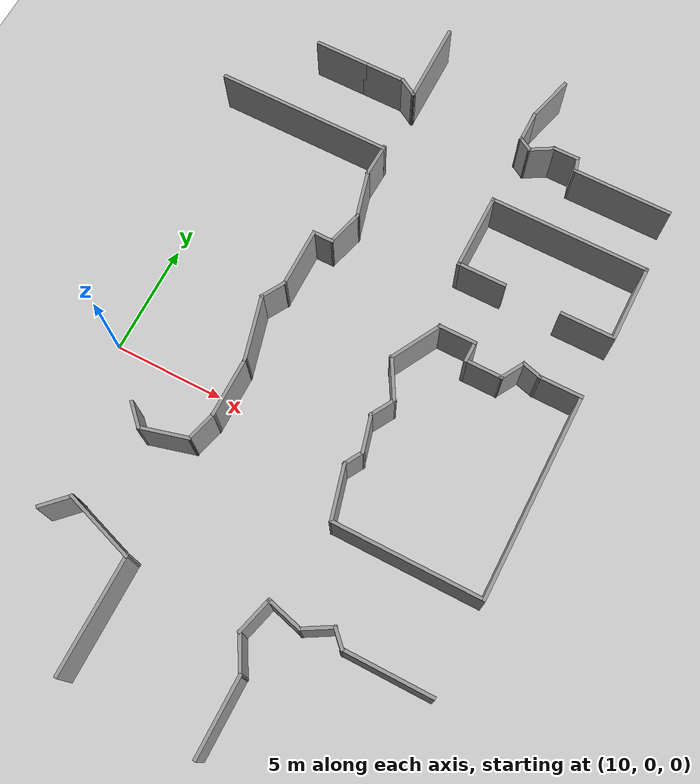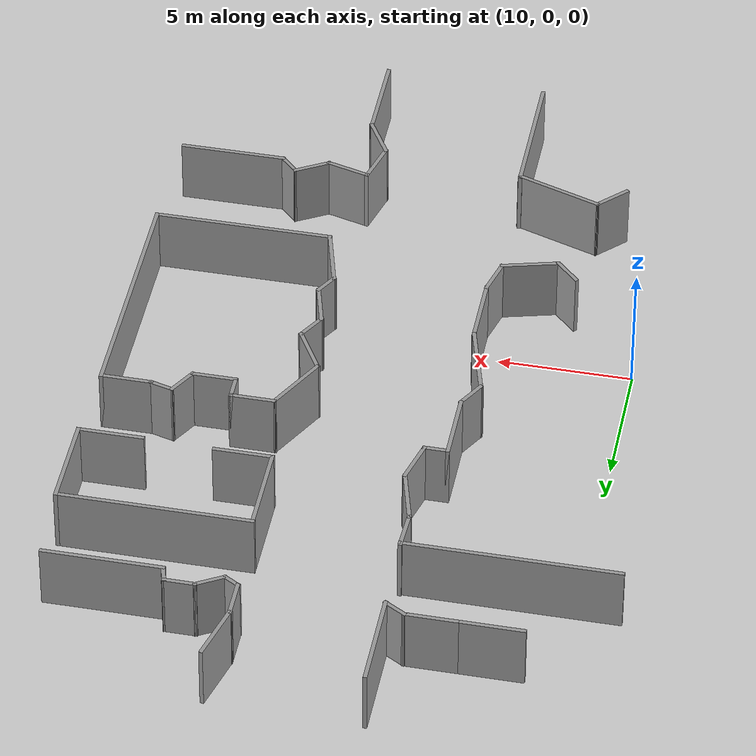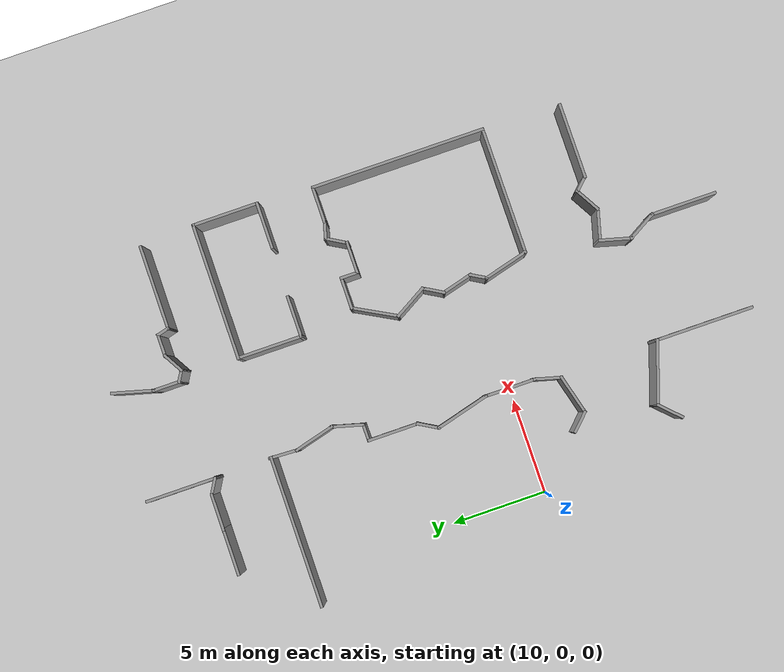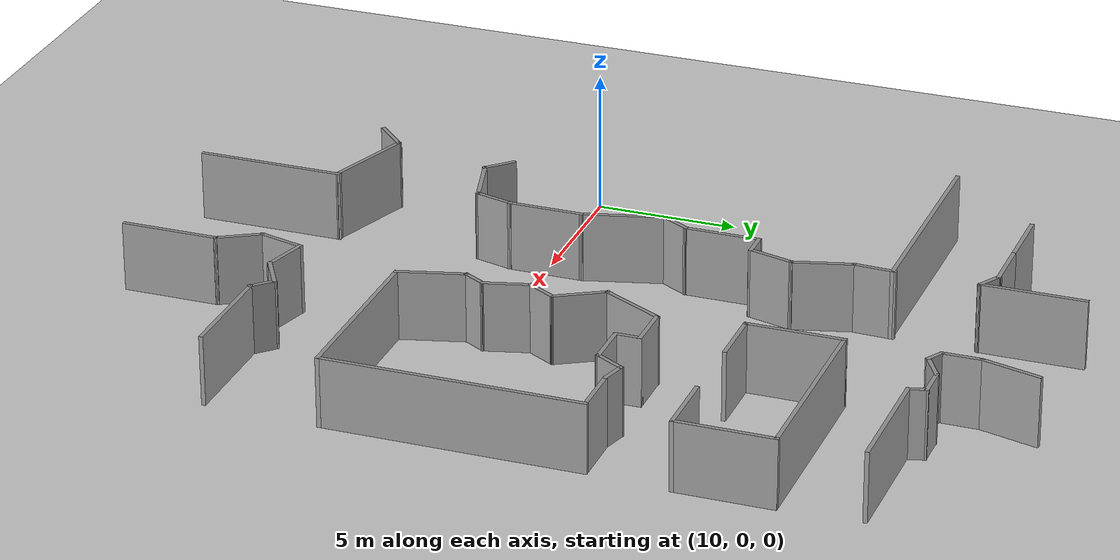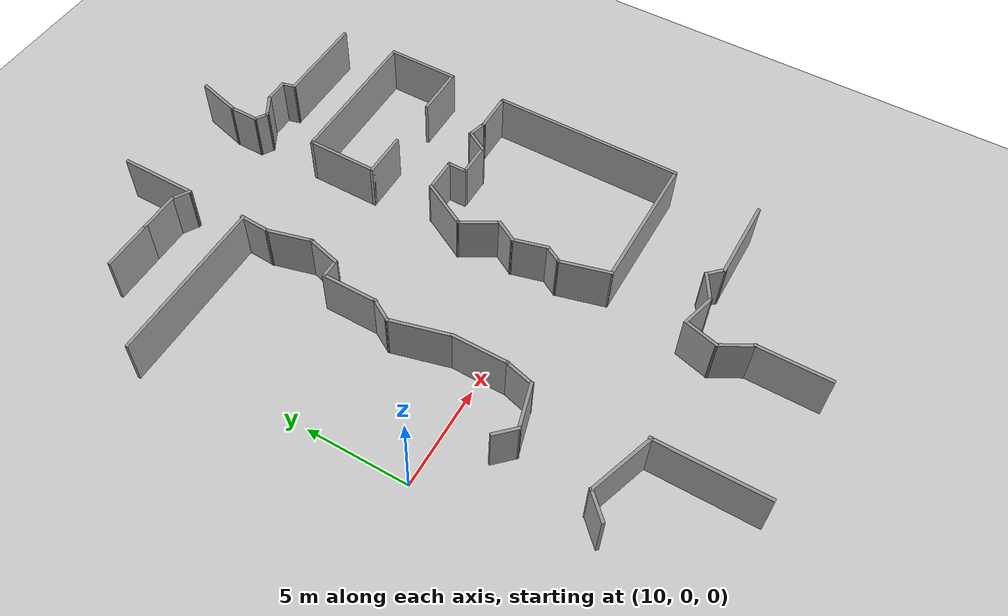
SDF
<sdf version="1.6">
 <world name="default">
  <model name="ground_plane">
   <static>1</static>
   <link name="link">
    <collision name="collision">
     <geometry><plane><normal>0 0 1</normal><size>100 100</size></plane></geometry>
     <surface><friction><ode><mu>100</mu><mu2>50</mu2></ode></friction></surface>
    </collision>
    <visual name="visual">
     <cast_shadows>0</cast_shadows>
     <geometry><plane><normal>0 0 1</normal><size>100 100</size></plane></geometry>
     <material>
      <script><uri>file://media/materials/scripts/gazebo.material</uri><name>Gazebo/Grey</name></script>
     </material>
    </visual>
   </link>
  </model>
  <model name="room">
   <pose>12.4952 3.15232 0 0 -0 0</pose>
   <link name="Wall_357">
    <collision name="Wall_357_Collision">
     <geometry><box><size>1.25 0.15 2.5</size></box></geometry>
     <pose>0 0 1.25 0 -0 0</pose>
    </collision>
    <visual name="Wall_357_Visual">
     <pose>0 0 1.25 0 -0 0</pose>
     <geometry><box><size>1.25 0.15 2.5</size></box></geometry>
     <material>
      <script><uri>file://media/materials/scripts/gazebo.material</uri><name>Gazebo/Grey</name></script>
      <ambient>1 1 1 1</ambient>
     </material>
     <meta><layer>0</layer></meta>
    </visual>
    <pose>0.437737 -5.84833 0 0 0 -0.785398</pose>
   </link>
   <link name="Wall_358">
    <collision name="Wall_358_Collision">
     <geometry><box><size>2.25 0.15 2.5</size></box></geometry>
     <pose>0 0 1.25 0 -0 0</pose>
    </collision>
    <visual name="Wall_358_Visual">
     <pose>0 0 1.25 0 -0 0</pose>
     <geometry><box><size>2.25 0.15 2.5</size></box></geometry>
     <material>
      <script><uri>file://media/materials/scripts/gazebo.material</uri><name>Gazebo/Grey</name></script>
      <ambient>1 1 1 1</ambient>
     </material>
     <meta><layer>0</layer></meta>
    </visual>
    <pose>1.84087 -5.96548 0 0 -0 0.261799</pose>
   </link>
   <link name="Wall_359">
    <collision name="Wall_359_Collision">
     <geometry><box><size>1.5 0.15 2.5</size></box></geometry>
     <pose>0 0 1.25 0 -0 0</pose>
    </collision>
    <visual name="Wall_359_Visual">
     <pose>0 0 1.25 0 -0 0</pose>
     <geometry><box><size>1.5 0.15 2.5</size></box></geometry>
     <material>
      <script><uri>file://media/materials/scripts/gazebo.material</uri><name>Gazebo/Grey</name></script>
      <ambient>1 1 1 1</ambient>
     </material>
     <meta><layer>0</layer></meta>
    </visual>
    <pose>3.02979 -5.04172 0 0 -0 1.309</pose>
   </link>
   <link name="Wall_360">
    <collision name="Wall_360_Collision">
     <geometry><box><size>2.75 0.15 2.5</size></box></geometry>
     <pose>0 0 1.25 0 -0 0</pose>
    </collision>
    <visual name="Wall_360_Visual">
     <pose>0 0 1.25 0 -0 0</pose>
     <geometry><box><size>2.75 0.15 2.5</size></box></geometry>
     <material>
      <script><uri>file://media/materials/scripts/gazebo.material</uri><name>Gazebo/Grey</name></script>
      <ambient>1 1 1 1</ambient>
     </material>
     <meta><layer>0</layer></meta>
    </visual>
    <pose>3.2045 -3.08972 0 0 -0 1.5708</pose>
   </link>
   <link name="Wall_361">
    <collision name="Wall_361_Collision">
     <geometry><box><size>3 0.15 2.5</size></box></geometry>
     <pose>0 0 1.25 0 -0 0</pose>
    </collision>
    <visual name="Wall_361_Visual">
     <pose>0 0 1.25 0 -0 0</pose>
     <geometry><box><size>3 0.15 2.5</size></box></geometry>
     <material>
      <script><uri>file://media/materials/scripts/gazebo.material</uri><name>Gazebo/Grey</name></script>
      <ambient>1 1 1 1</ambient>
     </material>
     <meta><layer>0</layer></meta>
    </visual>
    <pose>2.83568 -0.413273 0 0 -0 1.8326</pose>
   </link>
   <link name="Wall_362">
    <collision name="Wall_362_Collision">
     <geometry><box><size>1.25 0.15 2.5</size></box></geometry>
     <pose>0 0 1.25 0 -0 0</pose>
    </collision>
    <visual name="Wall_362_Visual">
     <pose>0 0 1.25 0 -0 0</pose>
     <geometry><box><size>1.25 0.15 2.5</size></box></geometry>
     <material>
      <script><uri>file://media/materials/scripts/gazebo.material</uri><name>Gazebo/Grey</name></script>
      <ambient>1 1 1 1</ambient>
     </material>
     <meta><layer>0</layer></meta>
    </visual>
    <pose>2.74186 1.43949 0 0 -0 1.0472</pose>
   </link>
   <link name="Wall_369">
    <collision name="Wall_369_Collision">
     <geometry><box><size>2.75 0.15 2.5</size></box></geometry>
     <pose>0 0 1.25 0 -0 0</pose>
    </collision>
    <visual name="Wall_369_Visual">
     <pose>0 0 1.25 0 -0 0</pose>
     <geometry><box><size>2.75 0.15 2.5</size></box></geometry>
     <material>
      <script><uri>file://media/materials/scripts/gazebo.material</uri><name>Gazebo/Grey</name></script>
      <ambient>1 1 1 1</ambient>
     </material>
     <meta><layer>0</layer></meta>
    </visual>
    <pose>3.01686 3.2158 0 0 -0 1.5708</pose>
   </link>
   <link name="Wall_370">
    <collision name="Wall_370_Collision">
     <geometry><box><size>1 0.15 2.5</size></box></geometry>
     <pose>0 0 1.25 0 -0 0</pose>
    </collision>
    <visual name="Wall_370_Visual">
     <pose>0 0 1.25 0 -0 0</pose>
     <geometry><box><size>1 0.15 2.5</size></box></geometry>
     <material>
      <script><uri>file://media/materials/scripts/gazebo.material</uri><name>Gazebo/Grey</name></script>
      <ambient>1 1 1 1</ambient>
     </material>
     <meta><layer>0</layer></meta>
    </visual>
    <pose>3.44186 4.5158 0 0 -0 0</pose>
   </link>
   <link name="Wall_371">
    <collision name="Wall_371_Collision">
     <geometry><box><size>1.75 0.15 2.5</size></box></geometry>
     <pose>0 0 1.25 0 -0 0</pose>
    </collision>
    <visual name="Wall_371_Visual">
     <pose>0 0 1.25 0 -0 0</pose>
     <geometry><box><size>1.75 0.15 2.5</size></box></geometry>
     <material>
      <script><uri>file://media/materials/scripts/gazebo.material</uri><name>Gazebo/Grey</name></script>
      <ambient>1 1 1 1</ambient>
     </material>
     <meta><layer>0</layer></meta>
    </visual>
    <pose>4.07392 5.28854 0 0 -0 1.309</pose>
   </link>
   <link name="Wall_372">
    <collision name="Wall_372_Collision">
     <geometry><box><size>2.25 0.15 2.5</size></box></geometry>
     <pose>0 0 1.25 0 -0 0</pose>
    </collision>
    <visual name="Wall_372_Visual">
     <pose>0 0 1.25 0 -0 0</pose>
     <geometry><box><size>2.25 0.15 2.5</size></box></geometry>
     <material>
      <script><uri>file://media/materials/scripts/gazebo.material</uri><name>Gazebo/Grey</name></script>
      <ambient>1 1 1 1</ambient>
     </material>
     <meta><layer>0</layer></meta>
    </visual>
    <pose>4.00921 7.0755 0 0 -0 1.8326</pose>
   </link>
   <link name="Wall_373">
    <collision name="Wall_373_Collision">
     <geometry><box><size>1.56108 0.15 2.5</size></box></geometry>
     <pose>0 0 1.25 0 -0 0</pose>
    </collision>
    <visual name="Wall_373_Visual">
     <pose>0 0 1.25 0 -0 0</pose>
     <geometry><box><size>1.56108 0.15 2.5</size></box></geometry>
     <material>
      <script><uri>file://media/materials/scripts/gazebo.material</uri><name>Gazebo/Grey</name></script>
      <ambient>1 1 1 1</ambient>
     </material>
     <meta><layer>0</layer></meta>
    </visual>
    <pose>3.76736 8.79463 0 0 -0 1.5284</pose>
   </link>
   <link name="Wall_374">
    <collision name="Wall_374_Collision">
     <geometry><box><size>8 0.15 2.5</size></box></geometry>
     <pose>0 0 1.25 0 -0 0</pose>
    </collision>
    <visual name="Wall_374_Visual">
     <pose>0 0 1.25 0 -0 0</pose>
     <geometry><box><size>8 0.15 2.5</size></box></geometry>
     <material>
      <script><uri>file://media/materials/scripts/gazebo.material</uri><name>Gazebo/Grey</name></script>
      <ambient>1 1 1 1</ambient>
     </material>
     <meta><layer>0</layer></meta>
    </visual>
    <pose>-0.127739 9.43972 0 0 -0 3.14159</pose>
   </link>
   <link name="Wall_377">
    <collision name="Wall_377_Collision">
     <geometry><box><size>3.55981 0.15 2.5</size></box></geometry>
     <pose>0 0 1.25 0 -0 0</pose>
    </collision>
    <visual name="Wall_377_Visual">
     <pose>0 0 1.25 0 -0 0</pose>
     <geometry><box><size>3.55981 0.15 2.5</size></box></geometry>
     <material>
      <script><uri>file://media/materials/scripts/gazebo.material</uri><name>Gazebo/Grey</name></script>
      <ambient>1 1 1 1</ambient>
     </material>
     <meta><layer>0</layer></meta>
    </visual>
    <pose>16.1865 7.68741 0 0 0 -1.5708</pose>
   </link>
   <link name="Wall_378">
    <collision name="Wall_378_Collision">
     <geometry><box><size>2.5 0.15 2.5</size></box></geometry>
     <pose>0 0 1.25 0 -0 0</pose>
    </collision>
    <visual name="Wall_378_Visual">
     <pose>0 0 1.25 0 -0 0</pose>
     <geometry><box><size>2.5 0.15 2.5</size></box></geometry>
     <material>
      <script><uri>file://media/materials/scripts/gazebo.material</uri><name>Gazebo/Grey</name></script>
      <ambient>1 1 1 1</ambient>
     </material>
     <meta><layer>0</layer></meta>
    </visual>
    <pose>15.0115 5.9825 0 0 -0 3.14159</pose>
   </link>
   <link name="Wall_382">
    <collision name="Wall_382_Collision">
     <geometry><box><size>7.25 0.15 2.5</size></box></geometry>
     <pose>0 0 1.25 0 -0 0</pose>
    </collision>
    <visual name="Wall_382_Visual">
     <pose>0 0 1.25 0 -0 0</pose>
     <geometry><box><size>7.25 0.15 2.5</size></box></geometry>
     <material>
      <script><uri>file://media/materials/scripts/gazebo.material</uri><name>Gazebo/Grey</name></script>
      <ambient>1 1 1 1</ambient>
     </material>
     <meta><layer>0</layer></meta>
    </visual>
    <pose>12.6365 9.39231 0 0 -0 3.14159</pose>
   </link>
   <link name="Wall_385">
    <collision name="Wall_385_Collision">
     <geometry><box><size>3.5 0.15 2.5</size></box></geometry>
     <pose>0 0 1.25 0 -0 0</pose>
    </collision>
    <visual name="Wall_385_Visual">
     <pose>0 0 1.25 0 -0 0</pose>
     <geometry><box><size>3.5 0.15 2.5</size></box></geometry>
     <material>
      <script><uri>file://media/materials/scripts/gazebo.material</uri><name>Gazebo/Grey</name></script>
      <ambient>1 1 1 1</ambient>
     </material>
     <meta><layer>0</layer></meta>
    </visual>
    <pose>9.08655 7.71732 0 0 0 -1.5708</pose>
   </link>
   <link name="Wall_386">
    <collision name="Wall_386_Collision">
     <geometry><box><size>2.25 0.15 2.5</size></box></geometry>
     <pose>0 0 1.25 0 -0 0</pose>
    </collision>
    <visual name="Wall_386_Visual">
     <pose>0 0 1.25 0 -0 0</pose>
     <geometry><box><size>2.25 0.15 2.5</size></box></geometry>
     <material>
      <script><uri>file://media/materials/scripts/gazebo.material</uri><name>Gazebo/Grey</name></script>
      <ambient>1 1 1 1</ambient>
     </material>
     <meta><layer>0</layer></meta>
    </visual>
    <pose>10.1365 6.04232 0 0 -0 0</pose>
   </link>
   <link name="Wall_388">
    <collision name="Wall_388_Collision">
     <geometry><box><size>1.75 0.15 2.5</size></box></geometry>
     <pose>0 0 1.25 0 -0 0</pose>
    </collision>
    <visual name="Wall_388_Visual">
     <pose>0 0 1.25 0 -0 0</pose>
     <geometry><box><size>1.75 0.15 2.5</size></box></geometry>
     <material>
      <script><uri>file://media/materials/scripts/gazebo.material</uri><name>Gazebo/Grey</name></script>
      <ambient>1 1 1 1</ambient>
     </material>
     <meta><layer>0</layer></meta>
    </visual>
    <pose>10.4141 3.17204 0 0 -0 0</pose>
   </link>
   <link name="Wall_389">
    <collision name="Wall_389_Collision">
     <geometry><box><size>1 0.15 2.5</size></box></geometry>
     <pose>0 0 1.25 0 -0 0</pose>
    </collision>
    <visual name="Wall_389_Visual">
     <pose>0 0 1.25 0 -0 0</pose>
     <geometry><box><size>1 0.15 2.5</size></box></geometry>
     <material>
      <script><uri>file://media/materials/scripts/gazebo.material</uri><name>Gazebo/Grey</name></script>
      <ambient>1 1 1 1</ambient>
     </material>
     <meta><layer>0</layer></meta>
    </visual>
    <pose>11.2141 2.74704 0 0 0 -1.5708</pose>
   </link>
   <link name="Wall_390">
    <collision name="Wall_390_Collision">
     <geometry><box><size>1.75 0.15 2.5</size></box></geometry>
     <pose>0 0 1.25 0 -0 0</pose>
    </collision>
    <visual name="Wall_390_Visual">
     <pose>0 0 1.25 0 -0 0</pose>
     <geometry><box><size>1.75 0.15 2.5</size></box></geometry>
     <material>
      <script><uri>file://media/materials/scripts/gazebo.material</uri><name>Gazebo/Grey</name></script>
      <ambient>1 1 1 1</ambient>
     </material>
     <meta><layer>0</layer></meta>
    </visual>
    <pose>12.0141 2.32205 0 0 -0 0</pose>
   </link>
   <link name="Wall_391">
    <collision name="Wall_391_Collision">
     <geometry><box><size>1.25 0.15 2.5</size></box></geometry>
     <pose>0 0 1.25 0 -0 0</pose>
    </collision>
    <visual name="Wall_391_Visual">
     <pose>0 0 1.25 0 -0 0</pose>
     <geometry><box><size>1.25 0.15 2.5</size></box></geometry>
     <material>
      <script><uri>file://media/materials/scripts/gazebo.material</uri><name>Gazebo/Grey</name></script>
      <ambient>1 1 1 1</ambient>
     </material>
     <meta><layer>0</layer></meta>
    </visual>
    <pose>13.0891 2.79836 0 0 -0 1.0472</pose>
   </link>
   <link name="Wall_392">
    <collision name="Wall_392_Collision">
     <geometry><box><size>1 0.15 2.5</size></box></geometry>
     <pose>0 0 1.25 0 -0 0</pose>
    </collision>
    <visual name="Wall_392_Visual">
     <pose>0 0 1.25 0 -0 0</pose>
     <geometry><box><size>1 0.15 2.5</size></box></geometry>
     <material>
      <script><uri>file://media/materials/scripts/gazebo.material</uri><name>Gazebo/Grey</name></script>
      <ambient>1 1 1 1</ambient>
     </material>
     <meta><layer>0</layer></meta>
    </visual>
    <pose>13.7746 3.16467 0 0 0 -0.261799</pose>
   </link>
   <link name="Wall_393">
    <collision name="Wall_393_Collision">
     <geometry><box><size>2 0.15 2.5</size></box></geometry>
     <pose>0 0 1.25 0 -0 0</pose>
    </collision>
    <visual name="Wall_393_Visual">
     <pose>0 0 1.25 0 -0 0</pose>
     <geometry><box><size>2 0.15 2.5</size></box></geometry>
     <material>
      <script><uri>file://media/materials/scripts/gazebo.material</uri><name>Gazebo/Grey</name></script>
      <ambient>1 1 1 1</ambient>
     </material>
     <meta><layer>0</layer></meta>
    </visual>
    <pose>15.1101 3.05468 0 0 -0 0</pose>
   </link>
   <link name="Wall_394">
    <collision name="Wall_394_Collision">
     <geometry><box><size>9.25 0.15 2.5</size></box></geometry>
     <pose>0 0 1.25 0 -0 0</pose>
    </collision>
    <visual name="Wall_394_Visual">
     <pose>0 0 1.25 0 -0 0</pose>
     <geometry><box><size>9.25 0.15 2.5</size></box></geometry>
     <material>
      <script><uri>file://media/materials/scripts/gazebo.material</uri><name>Gazebo/Grey</name></script>
      <ambient>1 1 1 1</ambient>
     </material>
     <meta><layer>0</layer></meta>
    </visual>
    <pose>16.0351 -1.49532 0 0 0 -1.5708</pose>
   </link>
   <link name="Wall_395">
    <collision name="Wall_395_Collision">
     <geometry><box><size>6.75 0.15 2.5</size></box></geometry>
     <pose>0 0 1.25 0 -0 0</pose>
    </collision>
    <visual name="Wall_395_Visual">
     <pose>0 0 1.25 0 -0 0</pose>
     <geometry><box><size>6.75 0.15 2.5</size></box></geometry>
     <material>
      <script><uri>file://media/materials/scripts/gazebo.material</uri><name>Gazebo/Grey</name></script>
      <ambient>1 1 1 1</ambient>
     </material>
     <meta><layer>0</layer></meta>
    </visual>
    <pose>12.7351 -6.04532 0 0 -0 3.14159</pose>
   </link>
   <link name="Wall_396">
    <collision name="Wall_396_Collision">
     <geometry><box><size>2.5 0.15 2.5</size></box></geometry>
     <pose>0 0 1.25 0 -0 0</pose>
    </collision>
    <visual name="Wall_396_Visual">
     <pose>0 0 1.25 0 -0 0</pose>
     <geometry><box><size>2.5 0.15 2.5</size></box></geometry>
     <material>
      <script><uri>file://media/materials/scripts/gazebo.material</uri><name>Gazebo/Grey</name></script>
      <ambient>1 1 1 1</ambient>
     </material>
     <meta><layer>0</layer></meta>
    </visual>
    <pose>9.13101 -4.91036 0 0 -0 1.8326</pose>
   </link>
   <link name="Wall_397">
    <collision name="Wall_397_Collision">
     <geometry><box><size>1 0.15 2.5</size></box></geometry>
     <pose>0 0 1.25 0 -0 0</pose>
    </collision>
    <visual name="Wall_397_Visual">
     <pose>0 0 1.25 0 -0 0</pose>
     <geometry><box><size>1 0.15 2.5</size></box></geometry>
     <material>
      <script><uri>file://media/materials/scripts/gazebo.material</uri><name>Gazebo/Grey</name></script>
      <ambient>1 1 1 1</ambient>
     </material>
     <meta><layer>0</layer></meta>
    </visual>
    <pose>9.0394 -3.40734 0 0 -0 1.0472</pose>
   </link>
   <link name="Wall_398">
    <collision name="Wall_398_Collision">
     <geometry><box><size>1.75 0.15 2.5</size></box></geometry>
     <pose>0 0 1.25 0 -0 0</pose>
    </collision>
    <visual name="Wall_398_Visual">
     <pose>0 0 1.25 0 -0 0</pose>
     <geometry><box><size>1.75 0.15 2.5</size></box></geometry>
     <material>
      <script><uri>file://media/materials/scripts/gazebo.material</uri><name>Gazebo/Grey</name></script>
      <ambient>1 1 1 1</ambient>
     </material>
     <meta><layer>0</layer></meta>
    </visual>
    <pose>9.04484 -2.26654 0 0 -0 1.8326</pose>
   </link>
   <link name="Wall_399">
    <collision name="Wall_399_Collision">
     <geometry><box><size>1.25 0.15 2.5</size></box></geometry>
     <pose>0 0 1.25 0 -0 0</pose>
    </collision>
    <visual name="Wall_399_Visual">
     <pose>0 0 1.25 0 -0 0</pose>
     <geometry><box><size>1.25 0.15 2.5</size></box></geometry>
     <material>
      <script><uri>file://media/materials/scripts/gazebo.material</uri><name>Gazebo/Grey</name></script>
      <ambient>1 1 1 1</ambient>
     </material>
     <meta><layer>0</layer></meta>
    </visual>
    <pose>9.11279 -1.01748 0 0 -0 1.0472</pose>
   </link>
   <link name="Wall_400">
    <collision name="Wall_400_Collision">
     <geometry><box><size>2 0.15 2.5</size></box></geometry>
     <pose>0 0 1.25 0 -0 0</pose>
    </collision>
    <visual name="Wall_400_Visual">
     <pose>0 0 1.25 0 -0 0</pose>
     <geometry><box><size>2 0.15 2.5</size></box></geometry>
     <material>
      <script><uri>file://media/materials/scripts/gazebo.material</uri><name>Gazebo/Grey</name></script>
      <ambient>1 1 1 1</ambient>
     </material>
     <meta><layer>0</layer></meta>
    </visual>
    <pose>8.92529 0.259907 0 0 -0 2.0944</pose>
   </link>
   <link name="Wall_401">
    <collision name="Wall_401_Collision">
     <geometry><box><size>2.5546 0.15 2.5</size></box></geometry>
     <pose>0 0 1.25 0 -0 0</pose>
    </collision>
    <visual name="Wall_401_Visual">
     <pose>0 0 1.25 0 -0 0</pose>
     <geometry><box><size>2.5546 0.15 2.5</size></box></geometry>
     <material>
      <script><uri>file://media/materials/scripts/gazebo.material</uri><name>Gazebo/Grey</name></script>
      <ambient>1 1 1 1</ambient>
     </material>
     <meta><layer>0</layer></meta>
    </visual>
    <pose>9.03843 2.11651 0 0 -0 1.07152</pose>
   </link>
   <link name="Wall_407">
    <collision name="Wall_407_Collision">
     <geometry><box><size>2.5 0.15 2.5</size></box></geometry>
     <pose>0 0 1.25 0 -0 0</pose>
    </collision>
    <visual name="Wall_407_Visual">
     <pose>0 0 1.25 0 -0 0</pose>
     <geometry><box><size>2.5 0.15 2.5</size></box></geometry>
     <material>
      <script><uri>file://media/materials/scripts/gazebo.material</uri><name>Gazebo/Grey</name></script>
      <ambient>1 1 1 1</ambient>
     </material>
     <meta><layer>0</layer></meta>
    </visual>
    <pose>-0.012013 12.8578 0 0 -0 0</pose>
   </link>
   <link name="Wall_408">
    <collision name="Wall_408_Collision">
     <geometry><box><size>2 0.15 2.5</size></box></geometry>
     <pose>0 0 1.25 0 -0 0</pose>
    </collision>
    <visual name="Wall_408_Visual">
     <pose>0 0 1.25 0 -0 0</pose>
     <geometry><box><size>2 0.15 2.5</size></box></geometry>
     <material>
      <script><uri>file://media/materials/scripts/gazebo.material</uri><name>Gazebo/Grey</name></script>
      <ambient>1 1 1 1</ambient>
     </material>
     <meta><layer>0</layer></meta>
    </visual>
    <pose>2.08799 12.8578 0 0 -0 0</pose>
   </link>
   <link name="Wall_409">
    <collision name="Wall_409_Collision">
     <geometry><box><size>1 0.15 2.5</size></box></geometry>
     <pose>0 0 1.25 0 -0 0</pose>
    </collision>
    <visual name="Wall_409_Visual">
     <pose>0 0 1.25 0 -0 0</pose>
     <geometry><box><size>1 0.15 2.5</size></box></geometry>
     <material>
      <script><uri>file://media/materials/scripts/gazebo.material</uri><name>Gazebo/Grey</name></script>
      <ambient>1 1 1 1</ambient>
     </material>
     <meta><layer>0</layer></meta>
    </visual>
    <pose>3.38105 12.6453 0 0 0 -0.523599</pose>
   </link>
   <link name="Wall_410">
    <collision name="Wall_410_Collision">
     <geometry><box><size>3.75 0.15 2.5</size></box></geometry>
     <pose>0 0 1.25 0 -0 0</pose>
    </collision>
    <visual name="Wall_410_Visual">
     <pose>0 0 1.25 0 -0 0</pose>
     <geometry><box><size>3.75 0.15 2.5</size></box></geometry>
     <material>
      <script><uri>file://media/materials/scripts/gazebo.material</uri><name>Gazebo/Grey</name></script>
      <ambient>1 1 1 1</ambient>
     </material>
     <meta><layer>0</layer></meta>
    </visual>
    <pose>3.74911 14.2328 0 0 -0 1.5708</pose>
   </link>
   <link name="Wall_418">
    <collision name="Wall_418_Collision">
     <geometry><box><size>2.25 0.15 2.5</size></box></geometry>
     <pose>0 0 1.25 0 -0 0</pose>
    </collision>
    <visual name="Wall_418_Visual">
     <pose>0 0 1.25 0 -0 0</pose>
     <geometry><box><size>2.25 0.15 2.5</size></box></geometry>
     <material>
      <script><uri>file://media/materials/scripts/gazebo.material</uri><name>Gazebo/Grey</name></script>
      <ambient>1 1 1 1</ambient>
     </material>
     <meta><layer>0</layer></meta>
    </visual>
    <pose>9.19725 14.9562 0 0 0 -1.8326</pose>
   </link>
   <link name="Wall_419">
    <collision name="Wall_419_Collision">
     <geometry><box><size>1.5 0.15 2.5</size></box></geometry>
     <pose>0 0 1.25 0 -0 0</pose>
    </collision>
    <visual name="Wall_419_Visual">
     <pose>0 0 1.25 0 -0 0</pose>
     <geometry><box><size>1.5 0.15 2.5</size></box></geometry>
     <material>
      <script><uri>file://media/materials/scripts/gazebo.material</uri><name>Gazebo/Grey</name></script>
      <ambient>1 1 1 1</ambient>
     </material>
     <meta><layer>0</layer></meta>
    </visual>
    <pose>8.92549 13.267 0 0 0 -1.5708</pose>
   </link>
   <link name="Wall_420">
    <collision name="Wall_420_Collision">
     <geometry><box><size>0.75 0.15 2.5</size></box></geometry>
     <pose>0 0 1.25 0 -0 0</pose>
    </collision>
    <visual name="Wall_420_Visual">
     <pose>0 0 1.25 0 -0 0</pose>
     <geometry><box><size>0.75 0.15 2.5</size></box></geometry>
     <material>
      <script><uri>file://media/materials/scripts/gazebo.material</uri><name>Gazebo/Grey</name></script>
      <ambient>1 1 1 1</ambient>
     </material>
     <meta><layer>0</layer></meta>
    </visual>
    <pose>9.1853 12.442 0 0 0 -0.523599</pose>
   </link>
   <link name="Wall_421">
    <collision name="Wall_421_Collision">
     <geometry><box><size>1.25 0.15 2.5</size></box></geometry>
     <pose>0 0 1.25 0 -0 0</pose>
    </collision>
    <visual name="Wall_421_Visual">
     <pose>0 0 1.25 0 -0 0</pose>
     <geometry><box><size>1.25 0.15 2.5</size></box></geometry>
     <material>
      <script><uri>file://media/materials/scripts/gazebo.material</uri><name>Gazebo/Grey</name></script>
      <ambient>1 1 1 1</ambient>
     </material>
     <meta><layer>0</layer></meta>
    </visual>
    <pose>9.92142 12.567 0 0 -0 0.523599</pose>
   </link>
   <link name="Wall_422">
    <collision name="Wall_422_Collision">
     <geometry><box><size>1.25 0.15 2.5</size></box></geometry>
     <pose>0 0 1.25 0 -0 0</pose>
    </collision>
    <visual name="Wall_422_Visual">
     <pose>0 0 1.25 0 -0 0</pose>
     <geometry><box><size>1.25 0.15 2.5</size></box></geometry>
     <material>
      <script><uri>file://media/materials/scripts/gazebo.material</uri><name>Gazebo/Grey</name></script>
      <ambient>1 1 1 1</ambient>
     </material>
     <meta><layer>0</layer></meta>
    </visual>
    <pose>10.9477 12.842 0 0 -0 0</pose>
   </link>
   <link name="Wall_423">
    <collision name="Wall_423_Collision">
     <geometry><box><size>0.75 0.15 2.5</size></box></geometry>
     <pose>0 0 1.25 0 -0 0</pose>
    </collision>
    <visual name="Wall_423_Visual">
     <pose>0 0 1.25 0 -0 0</pose>
     <geometry><box><size>0.75 0.15 2.5</size></box></geometry>
     <material>
      <script><uri>file://media/materials/scripts/gazebo.material</uri><name>Gazebo/Grey</name></script>
      <ambient>1 1 1 1</ambient>
     </material>
     <meta><layer>0</layer></meta>
    </visual>
    <pose>11.5754 12.5522 0 0 0 -1.309</pose>
   </link>
   <link name="Wall_424">
    <collision name="Wall_424_Collision">
     <geometry><box><size>4.5 0.15 2.5</size></box></geometry>
     <pose>0 0 1.25 0 -0 0</pose>
    </collision>
    <visual name="Wall_424_Visual">
     <pose>0 0 1.25 0 -0 0</pose>
     <geometry><box><size>4.5 0.15 2.5</size></box></geometry>
     <material>
      <script><uri>file://media/materials/scripts/gazebo.material</uri><name>Gazebo/Grey</name></script>
      <ambient>1 1 1 1</ambient>
     </material>
     <meta><layer>0</layer></meta>
    </visual>
    <pose>13.828 12.2624 0 0 -0 0</pose>
   </link>
   <link name="Wall_443">
    <collision name="Wall_443_Collision">
     <geometry><box><size>1.5 0.15 2.5</size></box></geometry>
     <pose>0 0 1.25 0 -0 0</pose>
    </collision>
    <visual name="Wall_443_Visual">
     <pose>0 0 1.25 0 -0 0</pose>
     <geometry><box><size>1.5 0.15 2.5</size></box></geometry>
     <material>
      <script><uri>file://media/materials/scripts/gazebo.material</uri><name>Gazebo/Grey</name></script>
      <ambient>1 1 1 1</ambient>
     </material>
     <meta><layer>0</layer></meta>
    </visual>
    <pose>-0.526645 -10.3157 0 0 -0 0.785398</pose>
   </link>
   <link name="Wall_444">
    <collision name="Wall_444_Collision">
     <geometry><box><size>3.42938 0.15 2.5</size></box></geometry>
     <pose>0 0 1.25 0 -0 0</pose>
    </collision>
    <visual name="Wall_444_Visual">
     <pose>0 0 1.25 0 -0 0</pose>
     <geometry><box><size>3.42938 0.15 2.5</size></box></geometry>
     <material>
      <script><uri>file://media/materials/scripts/gazebo.material</uri><name>Gazebo/Grey</name></script>
      <ambient>1 1 1 1</ambient>
     </material>
     <meta><layer>0</layer></meta>
    </visual>
    <pose>1.50567 -10.3585 0 0 0 -0.322762</pose>
   </link>
   <link name="Wall_445">
    <collision name="Wall_445_Collision">
     <geometry><box><size>5.25 0.15 2.5</size></box></geometry>
     <pose>0 0 1.25 0 -0 0</pose>
    </collision>
    <visual name="Wall_445_Visual">
     <pose>0 0 1.25 0 -0 0</pose>
     <geometry><box><size>5.25 0.15 2.5</size></box></geometry>
     <material>
      <script><uri>file://media/materials/scripts/gazebo.material</uri><name>Gazebo/Grey</name></script>
      <ambient>1 1 1 1</ambient>
     </material>
     <meta><layer>0</layer></meta>
    </visual>
    <pose>3.0607 -13.3766 0 0 0 -1.5708</pose>
   </link>
   <link name="Wall_447">
    <collision name="Wall_447_Collision">
     <geometry><box><size>1.75 0.15 2.5</size></box></geometry>
     <pose>0 0 1.25 0 -0 0</pose>
    </collision>
    <visual name="Wall_447_Visual">
     <pose>0 0 1.25 0 -0 0</pose>
     <geometry><box><size>1.75 0.15 2.5</size></box></geometry>
     <material>
      <script><uri>file://media/materials/scripts/gazebo.material</uri><name>Gazebo/Grey</name></script>
      <ambient>1 1 1 1</ambient>
     </material>
     <meta><layer>0</layer></meta>
    </visual>
    <pose>9.52986 -10.023 0 0 0 -0.261799</pose>
   </link>
   <link name="Wall_448">
    <collision name="Wall_448_Collision">
     <geometry><box><size>1.5 0.15 2.5</size></box></geometry>
     <pose>0 0 1.25 0 -0 0</pose>
    </collision>
    <visual name="Wall_448_Visual">
     <pose>0 0 1.25 0 -0 0</pose>
     <geometry><box><size>1.5 0.15 2.5</size></box></geometry>
     <material>
      <script><uri>file://media/materials/scripts/gazebo.material</uri><name>Gazebo/Grey</name></script>
      <ambient>1 1 1 1</ambient>
     </material>
     <meta><layer>0</layer></meta>
    </visual>
    <pose>10.8872 -9.89252 0 0 -0 0.523599</pose>
   </link>
   <link name="Wall_449">
    <collision name="Wall_449_Collision">
     <geometry><box><size>1 0.15 2.5</size></box></geometry>
     <pose>0 0 1.25 0 -0 0</pose>
    </collision>
    <visual name="Wall_449_Visual">
     <pose>0 0 1.25 0 -0 0</pose>
     <geometry><box><size>1 0.15 2.5</size></box></geometry>
     <material>
      <script><uri>file://media/materials/scripts/gazebo.material</uri><name>Gazebo/Grey</name></script>
      <ambient>1 1 1 1</ambient>
     </material>
     <meta><layer>0</layer></meta>
    </visual>
    <pose>11.7723 -9.85554 0 0 0 -0.785398</pose>
   </link>
   <link name="Wall_450">
    <collision name="Wall_450_Collision">
     <geometry><box><size>4 0.15 2.5</size></box></geometry>
     <pose>0 0 1.25 0 -0 0</pose>
    </collision>
    <visual name="Wall_450_Visual">
     <pose>0 0 1.25 0 -0 0</pose>
     <geometry><box><size>4 0.15 2.5</size></box></geometry>
     <material>
      <script><uri>file://media/materials/scripts/gazebo.material</uri><name>Gazebo/Grey</name></script>
      <ambient>1 1 1 1</ambient>
     </material>
     <meta><layer>0</layer></meta>
    </visual>
    <pose>13.9978 -10.1561 0 0 -0 0</pose>
   </link>
   <link name="Wall_452">
    <collision name="Wall_452_Collision">
     <geometry><box><size>1.75 0.15 2.5</size></box></geometry>
     <pose>0 0 1.25 0 -0 0</pose>
    </collision>
    <visual name="Wall_452_Visual">
     <pose>0 0 1.25 0 -0 0</pose>
     <geometry><box><size>1.75 0.15 2.5</size></box></geometry>
     <material>
      <script><uri>file://media/materials/scripts/gazebo.material</uri><name>Gazebo/Grey</name></script>
      <ambient>1 1 1 1</ambient>
     </material>
     <meta><layer>0</layer></meta>
    </visual>
    <pose>8.55007 -10.5886 0 0 0 -1.8326</pose>
   </link>
   <link name="Wall_453">
    <collision name="Wall_453_Collision">
     <geometry><box><size>1.75 0.15 2.5</size></box></geometry>
     <pose>0 0 1.25 0 -0 0</pose>
    </collision>
    <visual name="Wall_453_Visual">
     <pose>0 0 1.25 0 -0 0</pose>
     <geometry><box><size>1.75 0.15 2.5</size></box></geometry>
     <material>
      <script><uri>file://media/materials/scripts/gazebo.material</uri><name>Gazebo/Grey</name></script>
      <ambient>1 1 1 1</ambient>
     </material>
     <meta><layer>0</layer></meta>
    </visual>
    <pose>8.74301 -12.0542 0 0 0 -1.0472</pose>
   </link>
   <link name="Wall_454">
    <collision name="Wall_454_Collision">
     <geometry><box><size>3.5 0.15 2.5</size></box></geometry>
     <pose>0 0 1.25 0 -0 0</pose>
    </collision>
    <visual name="Wall_454_Visual">
     <pose>0 0 1.25 0 -0 0</pose>
     <geometry><box><size>3.5 0.15 2.5</size></box></geometry>
     <material>
      <script><uri>file://media/materials/scripts/gazebo.material</uri><name>Gazebo/Grey</name></script>
      <ambient>1 1 1 1</ambient>
     </material>
     <meta><layer>0</layer></meta>
    </visual>
    <pose>9.14301 -14.422 0 0 0 -1.5708</pose>
   </link>
   <static>1</static>
  </model>
 </world>
</sdf>
